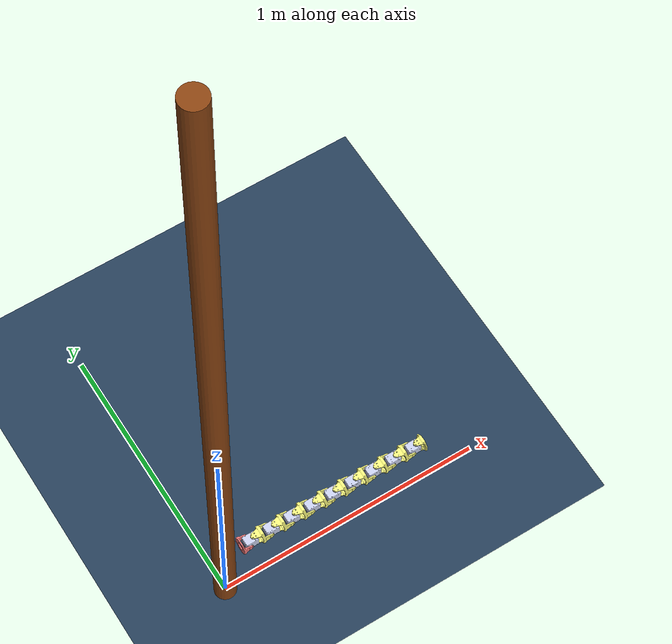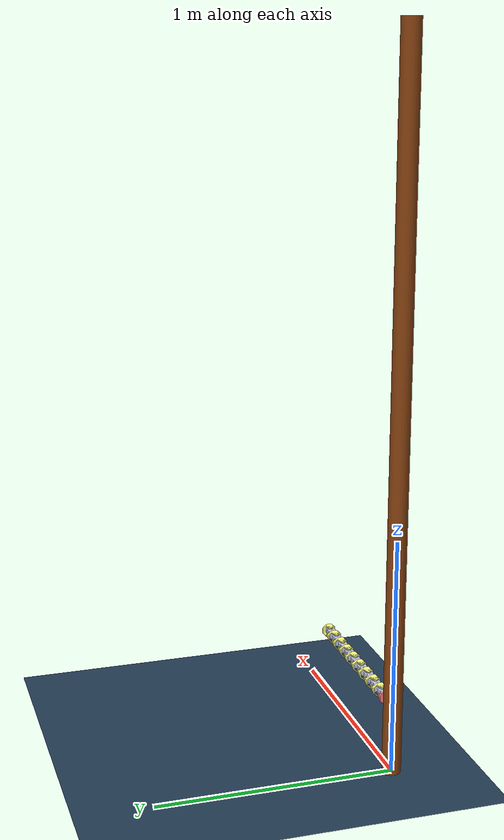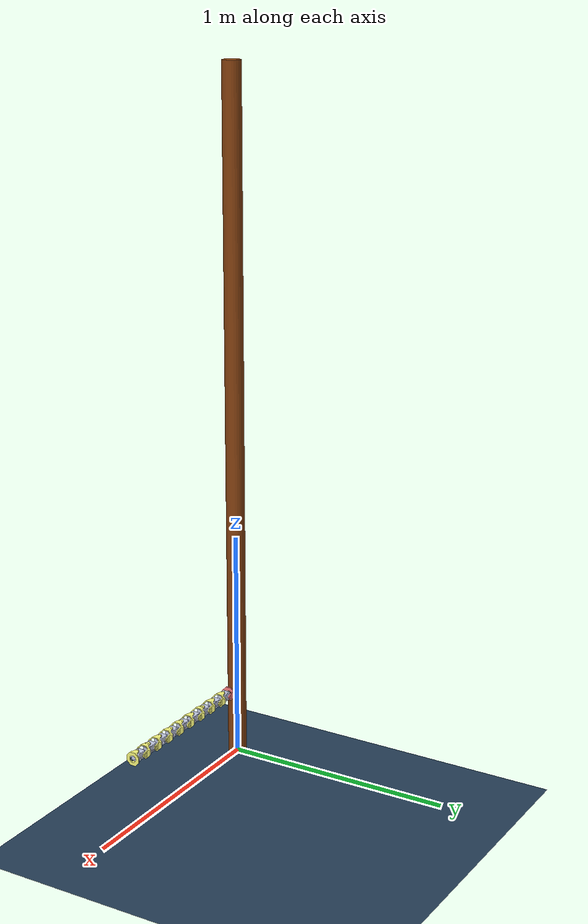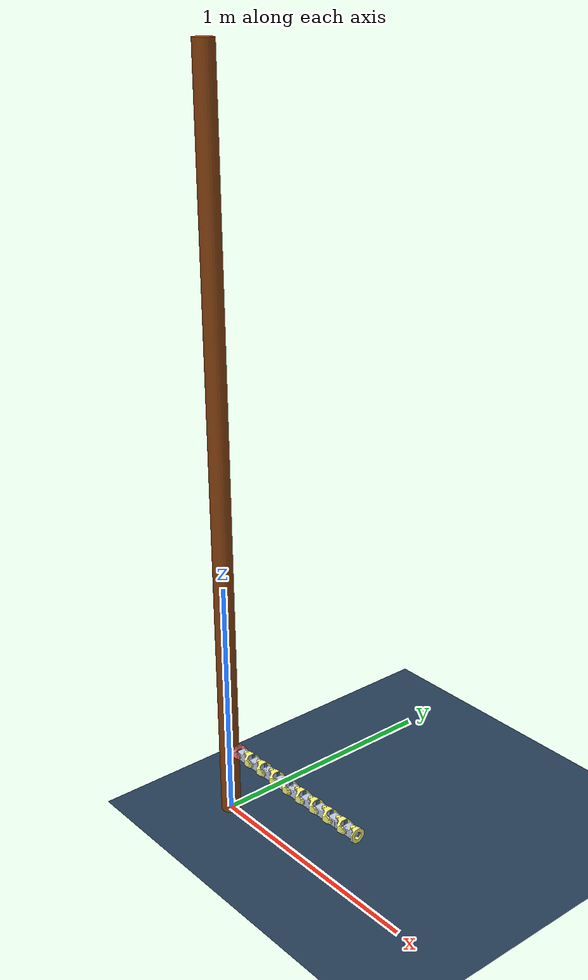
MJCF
<mujoco model="9motor_octa_sindwinder_assembly">
  <compiler angle="radian"/>
  <option gravity="0 0 -9.81" timestep="0.001"/>

  <visual>
    <headlight ambient="0.35 0.36 0.4" diffuse="0.45 0.45 0.45" specular="0.2 0.2 0.2"/>
    <global offwidth="1920" offheight="1080" azimuth="135" elevation="-12"/>
    <!-- znear small enough to sit right next to the robot; shadowclip covers
         the whole 3 m pole so the shadow does not stop halfway up. -->
    <map znear="0.004" zfar="40" shadowclip="4" shadowscale="0.6" force="0.008"/>
    <quality shadowsize="4096" offsamples="8" numslices="48"/>
    <!-- Haze fades the far floor into the skybox instead of ending it on a
         hard line at the edge of the plane. -->
    <rgba haze="0.55 0.62 0.72 1"/>
    <scale contactwidth="0.03" contactheight="0.012" forcewidth="0.012"
           framelength="0.08" framewidth="0.006" jointlength="0.05"
           jointwidth="0.006"/>
  </visual>
  <default>
  <!--  High friction in ALL directions for pipe gripping (condim=4 = elliptic cone)  -->
  <geom condim="4" friction="2.0 0.02 0.0001" margin="0.001" solimp="0.95 0.99 0.001" solref="0.01 1"/>
  </default>

  <asset>
    <!-- Sky. Purely so the scene has a horizon to read height against. -->
    <texture name="sky" type="skybox" builtin="gradient"
             rgb1="0.35 0.47 0.66" rgb2="0.78 0.84 0.90" width="512" height="512"/>
    <texture name="grid" type="2d" builtin="checker" rgb1="0.1 0.2 0.3" rgb2="0.2 0.3 0.4" width="512" height="512"/>
    <material name="grid_material" texture="grid" texrepeat="10 10" texuniform="true" reflectance="0"/>
    <!-- Pipe material: brown, slightly shiny -->
    <material name="pipe_material" rgba="0.55 0.27 0.07 1" reflectance="0.3"/>
    <mesh name="tail" content_type="model/stl" file="tail.STL"/>
    <mesh name="M1" content_type="model/stl" file="M1.STL"/>
    <mesh name="L1" content_type="model/stl" file="L1.STL"/>
    <mesh name="M2" content_type="model/stl" file="M2.STL"/>
    <mesh name="L2" content_type="model/stl" file="L2.STL"/>
    <mesh name="M3" content_type="model/stl" file="M3.STL"/>
    <mesh name="L3" content_type="model/stl" file="L3.STL"/>
    <mesh name="M4" content_type="model/stl" file="M4.STL"/>
    <mesh name="L4" content_type="model/stl" file="L4.STL"/>
    <mesh name="M5" content_type="model/stl" file="M5.STL"/>
    <mesh name="L5" content_type="model/stl" file="L5.STL"/>
    <mesh name="M6" content_type="model/stl" file="M6.STL"/>
    <mesh name="L6" content_type="model/stl" file="L6.STL"/>
    <mesh name="M7" content_type="model/stl" file="M7.STL"/>
    <mesh name="L7" content_type="model/stl" file="L7.STL"/>
    <mesh name="M8" content_type="model/stl" file="M8.STL"/>
    <mesh name="L8" content_type="model/stl" file="L8.STL"/>
    <mesh name="M9" content_type="model/stl" file="M9.STL"/>
    <mesh name="head" content_type="model/stl" file="head.STL"/>
  </asset>

  <worldbody>
    <light name="key" directional="true" castshadow="true"
           pos="2 2 4" dir="-0.5 -0.5 -1" diffuse="0.55 0.55 0.52" specular="0.25 0.25 0.25"/>
    <light name="fill" directional="true" castshadow="false"
           pos="-3 -1 3" dir="0.7 0.3 -1" diffuse="0.22 0.24 0.28"/>
    <light name="top" directional="true" castshadow="false"
           pos="0 0 6" dir="0 0 -1" diffuse="0.18 0.18 0.18"/>

    <!--  Floor  -->
    <geom name="floor" type="plane" size="5 5 0.1" material="grid_material" condim="3" friction="0.9 0.005 0.0001"/>

    <geom name="pipe" type="cylinder"
          size="0.04 1.5"
          pos="0 0 1.5"
          material="pipe_material"
          condim="4"
          friction="2.0 0.02 0.0001"
          solimp="0.95 0.99 0.001"
          solref="0.01 1"/>

    <body name="tail" pos="0.065 0 0.30">
      <inertial pos="0.0085891 0 0" quat="0.653281 -0.270598 0.270598 0.653281" mass="0.019811" diaginertia="0.00015 0.00015 0.00015"/>
      <joint name="floating_base" type="free"/>
      <geom type="mesh" rgba="1 0.5 0.50196 1" mesh="tail"/>
      <body name="M1" pos="0.028 0 0" quat="0.707105 0.707108 0 0">
        <inertial pos="0.012 0.00058697 0.00058706" quat="0.653531 0.269638 -0.271557 0.653031" mass="0.058086" diaginertia="0.000150344 0.00015 0.000149656"/>
        <joint name="J1" pos="0 0 0" axis="0 0 1" range="-1.4 1.4" actuatorfrcrange="-0.8 0.8"/>
        <geom type="mesh" rgba="0.79216 0.81961 0.93333 1" mesh="M1"/>
        <body name="L1" pos="0.024 0 0" quat="0.707105 -0.707108 0 0">
          <inertial pos="0.028 2.2011e-07 -2.2133e-07" quat="0.353493 0.853429 0.146577 0.353859" mass="0.02193" diaginertia="0.00015 0.00015 0.00015"/>
          <joint name="J2" pos="0 0 0" axis="0 0 1" range="-1.4 1.4" actuatorfrcrange="-0.8 0.8"/>
          <geom type="mesh" rgba="1 1 0.50196 1" mesh="L1"/>
          <body name="M2" pos="0.056 0 0" quat="0.707105 0.707108 0 0">
            <inertial pos="0.012 0.00058697 0.00058706" quat="0.653531 0.269638 -0.271557 0.653031" mass="0.058086" diaginertia="0.000150344 0.00015 0.000149656"/>
            <joint name="J3" pos="0 0 0" axis="0 0 1" range="-1.4 1.4" actuatorfrcrange="-0.8 0.8"/>
            <geom type="mesh" rgba="0.79216 0.81961 0.93333 1" mesh="M2"/>
            <body name="L2" pos="0.024 0 0" quat="0.707105 -0.707108 0 0">
              <inertial pos="0.028 2.2011e-07 -2.2118e-07" quat="0.353493 0.853429 0.146577 0.353859" mass="0.02193" diaginertia="0.00015 0.00015 0.00015"/>
              <joint name="J4" pos="0 0 0" axis="0 0 1" range="-1.4 1.4" actuatorfrcrange="-0.8 0.8"/>
              <geom type="mesh" rgba="1 1 0.50196 1" mesh="L2"/>
              <body name="M3" pos="0.056 0 0" quat="0.707105 0.707108 0 0">
                <inertial pos="0.0120001 0.000586973 0.000587064" quat="0.653531 0.269638 -0.271557 0.653031" mass="0.0580857" diaginertia="0.000150344 0.00015 0.000149656"/>
                <joint name="J5" pos="0 0 0" axis="0 0 1" range="-1.4 1.4" actuatorfrcrange="-0.8 0.8"/>
                <geom type="mesh" rgba="0.792157 0.819608 0.933333 1" mesh="M3"/>
                <body name="L3" pos="0.024 0 0" quat="0.707105 -0.707108 0 0">
                  <inertial pos="0.028 2.20111e-07 -2.21026e-07" quat="0.353493 0.853429 0.146577 0.353859" mass="0.0219299" diaginertia="0.00015 0.00015 0.00015"/>
                  <joint name="J6" pos="0 0 0" axis="0 0 1" range="-1.4 1.4" actuatorfrcrange="-0.8 0.8"/>
                  <geom type="mesh" rgba="1 1 0.50196 1" mesh="L3"/>
                  <body name="M4" pos="0.056 0 0" quat="0.707105 0.707108 0 0">
                    <inertial pos="0.0120001 0.000586973 0.000587064" quat="0.653531 0.269638 -0.271557 0.653031" mass="0.0580857" diaginertia="0.000150344 0.00015 0.000149656"/>
                    <joint name="J7" pos="0 0 0" axis="0 0 1" range="-1.4 1.4" actuatorfrcrange="-0.8 0.8"/>
                    <geom type="mesh" rgba="0.792157 0.819608 0.933333 1" mesh="M4"/>
                    <body name="L4" pos="0.024 0 0" quat="0.707105 -0.707108 0 0">
                      <inertial pos="0.028 2.20111e-07 -2.20874e-07" quat="0.353493 0.853429 0.146577 0.353859" mass="0.0219299" diaginertia="0.00015 0.00015 0.00015"/>
                      <joint name="J8" pos="0 0 0" axis="0 0 1" range="-1.4 1.4" actuatorfrcrange="-0.8 0.8"/>
                      <geom type="mesh" rgba="1 1 0.50196 1" mesh="L4"/>
                      <body name="M5" pos="0.056 0 0" quat="0.707105 0.707108 0 0">
                        <inertial pos="0.0120001 0.000586973 0.000587064" quat="0.653531 0.269638 -0.271557 0.653031" mass="0.0580857" diaginertia="0.000150344 0.00015 0.000149656"/>
                        <joint name="J9" pos="0 0 0" axis="0 0 1" range="-1.4 1.4" actuatorfrcrange="-0.8 0.8"/>
                        <geom type="mesh" rgba="0.792157 0.819608 0.933333 1" mesh="M5"/>
                        <body name="L5" pos="0.024 0 0" quat="0.707105 -0.707108 0 0">
                          <inertial pos="0.028 2.20111e-07 -2.20721e-07" quat="0.353493 0.853429 0.146577 0.353859" mass="0.0219299" diaginertia="0.00015 0.00015 0.00015"/>
                          <joint name="J10" pos="0 0 0" axis="0 0 1" range="-1.4 1.4" actuatorfrcrange="-0.8 0.8"/>
                          <geom type="mesh" rgba="1 1 0.50196 1" mesh="L5"/>
                          <body name="M6" pos="0.056 0 0" quat="0.707105 0.707108 0 0">
                            <inertial pos="0.0120001 0.000586973 0.000587064" quat="0.653531 0.269638 -0.271557 0.653031" mass="0.0580857" diaginertia="0.000150344 0.00015 0.000149656"/>
                            <joint name="J11" pos="0 0 0" axis="0 0 1" range="-1.4 1.4" actuatorfrcrange="-0.8 0.8"/>
                            <geom type="mesh" rgba="0.792157 0.819608 0.933333 1" mesh="M6"/>
                            <body name="L6" pos="0.024 0 0" quat="0.707105 -0.707108 0 0">
                              <inertial pos="0.028 2.20111e-07 -2.20569e-07" quat="0.353493 0.853429 0.146577 0.353859" mass="0.0219299" diaginertia="0.00015 0.00015 0.00015"/>
                              <joint name="J12" pos="0 0 0" axis="0 0 1" range="-1.4 1.4" actuatorfrcrange="-0.8 0.8"/>
                              <geom type="mesh" rgba="1 1 0.50196 1" mesh="L6"/>
                              <body name="M7" pos="0.056 0 0" quat="0.707105 0.707108 0 0">
                                <inertial pos="0.0120001 0.000586973 0.000587064" quat="0.653531 0.269638 -0.271557 0.653031" mass="0.0580857" diaginertia="0.000150344 0.00015 0.000149656"/>
                                <joint name="J13" pos="0 0 0" axis="0 0 1" range="-1.4 1.4" actuatorfrcrange="-0.8 0.8"/>
                                <geom type="mesh" rgba="0.792157 0.819608 0.933333 1" mesh="M7"/>
                                <body name="L7" pos="0.024 0 0" quat="0.707105 -0.707108 0 0">
                                  <inertial pos="0.028 2.20111e-07 -2.20416e-07" quat="0.353493 0.853429 0.146577 0.353859" mass="0.0219299" diaginertia="0.00015 0.00015 0.00015"/>
                                  <joint name="J14" pos="0 0 0" axis="0 0 1" range="-1.4 1.4" actuatorfrcrange="-0.8 0.8"/>
                                  <geom type="mesh" rgba="1 1 0.50196 1" mesh="L7"/>
                                  <body name="M8" pos="0.056 0 0" quat="0.707105 0.707108 0 0">
                                    <inertial pos="0.0120001 0.000586973 0.000587064" quat="0.653531 0.269638 -0.271557 0.653031" mass="0.0580857" diaginertia="0.000150344 0.00015 0.000149656"/>
                                    <joint name="J15" pos="0 0 0" axis="0 0 1" range="-1.4 1.4" actuatorfrcrange="-0.8 0.8"/>
                                    <geom type="mesh" rgba="0.792157 0.819608 0.933333 1" mesh="M8"/>
                                    <body name="L8" pos="0.024 0 0" quat="0.707105 -0.707108 0 0">
                                      <inertial pos="0.028 2.20111e-07 -2.20264e-07" quat="0.353493 0.853429 0.146577 0.353859" mass="0.0219299" diaginertia="0.00015 0.00015 0.00015"/>
                                      <joint name="J16" pos="0 0 0" axis="0 0 1" range="-1.4 1.4" actuatorfrcrange="-0.8 0.8"/>
                                      <geom type="mesh" rgba="1 1 0.50196 1" mesh="L8"/>
                                      <body name="M9" pos="0.056 0 0" quat="0.707105 0.707108 0 0">
                                        <inertial pos="0.0120001 0.000586973 0.000587064" quat="0.653531 0.269638 -0.271557 0.653031" mass="0.0580857" diaginertia="0.000150344 0.00015 0.000149656"/>
                                        <joint name="J17" pos="0 0 0" axis="0 0 1" range="-1.4 1.4" actuatorfrcrange="-0.8 0.8"/>
                                        <geom type="mesh" rgba="0.792157 0.819608 0.933333 1" mesh="M9"/>
                                        <body name="head" pos="0.024 0 0" quat="0.707105 -0.707108 0 0">
                                          <inertial pos="0.0194109 0 0" quat="0.653281 -0.270598 0.270598 0.653281" mass="0.0198108" diaginertia="0.00015 0.00015 0.00015"/>
                                          <joint name="J18" pos="0 0 0" axis="0 0 1" range="-1.4 1.4" actuatorfrcrange="-0.8 0.8"/>
                                          <geom type="mesh" rgba="1 1 0.50196 1" mesh="head"/>
                                        </body>
                                      </body>
                                    </body>
                                  </body>
                                </body>
                              </body>
                            </body>
                          </body>
                        </body>
                      </body>
                    </body>
                  </body>
                </body>
              </body>
            </body>
          </body>
        </body>
      </body>
    </body>
  </worldbody>

  <actuator>
  <position name="actuator1"  joint="J1"  kp="10" kv="0.02" ctrlrange="-1.5 1.5"/>
  <position name="actuator2"  joint="J2"  kp="10" kv="0.02" ctrlrange="-1.5 1.5"/>
  <position name="actuator3"  joint="J3"  kp="10" kv="0.02" ctrlrange="-1.5 1.5"/>
  <position name="actuator4"  joint="J4"  kp="10" kv="0.02" ctrlrange="-1.5 1.5"/>
  <position name="actuator5"  joint="J5"  kp="10" kv="0.02" ctrlrange="-1.5 1.5"/>
  <position name="actuator6"  joint="J6"  kp="10" kv="0.02" ctrlrange="-1.5 1.5"/>
  <position name="actuator7"  joint="J7"  kp="10" kv="0.02" ctrlrange="-1.5 1.5"/>
  <position name="actuator8"  joint="J8"  kp="10" kv="0.02" ctrlrange="-1.5 1.5"/>
  <position name="actuator9"  joint="J9"  kp="10" kv="0.02" ctrlrange="-1.5 1.5"/>
  <position name="actuator10" joint="J10" kp="10" kv="0.02" ctrlrange="-1.5 1.5"/>
  <position name="actuator11" joint="J11" kp="10" kv="0.02" ctrlrange="-1.5 1.5"/>
  <position name="actuator12" joint="J12" kp="10" kv="0.02" ctrlrange="-1.5 1.5"/>
  <position name="actuator13" joint="J13" kp="10" kv="0.02" ctrlrange="-1.5 1.5"/>
  <position name="actuator14" joint="J14" kp="10" kv="0.02" ctrlrange="-1.5 1.5"/>
  <position name="actuator15" joint="J15" kp="10" kv="0.02" ctrlrange="-1.5 1.5"/>
  <position name="actuator16" joint="J16" kp="10" kv="0.02" ctrlrange="-1.5 1.5"/>
  <position name="actuator17" joint="J17" kp="10" kv="0.02" ctrlrange="-1.5 1.5"/>
  <position name="actuator18" joint="J18" kp="10" kv="0.02" ctrlrange="-1.5 1.5"/>
  </actuator>

</mujoco>
